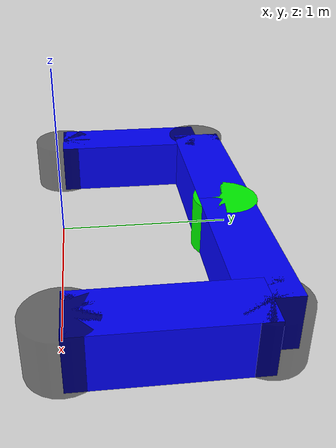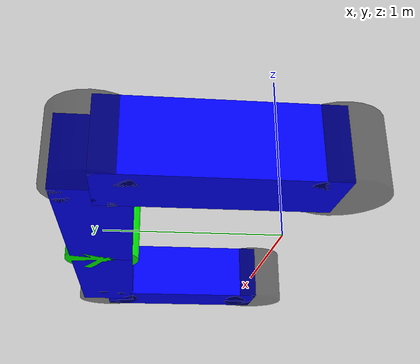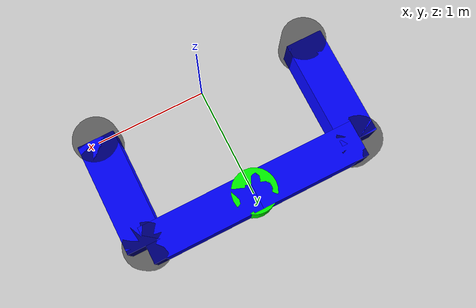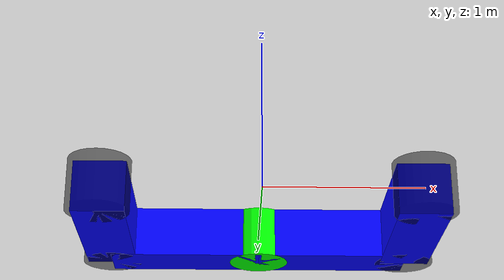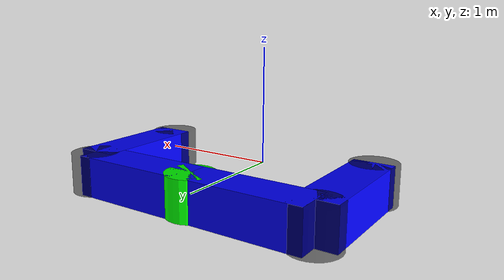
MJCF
<mujoco>
    <option timestep="0.00001" />
    <actuator>
        <motor gear="250" joint="shoulder_pitch" name="shoulder_pitch" ctrlrange="-100 100" ctrllimited="true"/>
        <motor gear="250" joint="shoulder_pitch2" name="shoulder_roll" ctrlrange="-100 100" ctrllimited="true"/>
    </actuator>
    <asset>
        <material name="blue" rgba="0 0 1 1" />
        <material name="green" rgba="0 1 0 1" />
        <material name="red" rgba="1 0 0 1" />
        <material name="white" rgba="1 1 1 1" />
        <material name="black" rgba="0 0 0 .5" />
    </asset>
    <worldbody>
        <geom type="plane" size="10 10 0.1" pos="0 0 -5" rgba=".9 0 0 1"  material = "white"/>
        <light diffuse=".5 .5 .5" pos="0 0 3" dir="0 0 -1" />
        <body name="link_1" pos="1 0 0" euler = "0 0 0">
            <joint name="shoulder_pitch" pos="0 0 0" axis="0 0 1" />
            <geom type="cylinder" size=".198 .165" pos="0 0 0" density="65" euler="0 0 0" material="black" />
            <geom type="box" size=".165 .165   .5" pos="0 .5 0" density="20" euler="90 0 0" material="blue" />
            <body name="link_2" pos="0 1 0" euler="0 0 0">
            <joint name="shoulder_pitch11" pos="0 0 0" axis="0 0 1" />
                <geom type="cylinder" size=".198    .165" pos="0 0 0" density="65" euler="0 0 0" material="black" />
                <geom type="box" size=".165 .165   .5" pos="-0.5 0 0" density="20" euler="90 90 0" material="blue" />
            <body name="actuator" pos="-1 0 0" euler="0 0 0">
                <joint name="shoulder_pitch12" pos="0 0 0" axis="0 0 1" />
                    <geom type="cylinder" size=".198    .165" pos="0 0 0" density="65" euler="0 0 0" material="green" />

                    </body>
                </body>
                </body>
        <body name="link_3" pos="-1 0 0" euler = "0 0 0">
            <joint name="shoulder_pitch2" pos="0 0 0" axis="0 0 1" />
            <geom type="cylinder" size=".198 .165" pos="0 0 0" density="65" euler="0 0 0" material="black" />
            <geom type="box" size=".165 .165   .5" pos="0 .5 0" density="20" euler="90 0 0" material="blue" />
            <body name="link_4" pos="0 1 0" euler="0 0 0">
            <joint name="shoulder_pitch22" pos="0 0 0" axis="0 0 1" />
                <geom type="cylinder" size=".198    .165" pos="0 0 0" density="65" euler="0 0 0" material="black" />
                <geom type="box" size=".165 .165   .5" pos="0.5 0 0" density="20" euler="90 -90 0" material="blue" />
            <body name="actuator2" pos="1 0 0" euler="0 0 0">
                <joint name="shoulder_pitch23" pos="0 0 0" axis="0 0 1" />
                    <geom type="cylinder" size=".198    .165" pos="0 0 0" density="65" euler="0 0 0" material="green" />

                    </body>
            </body>
        </body>
    </worldbody>
    <equality>
        <connect name="kinematic_link" active="true" body1="actuator" body2="actuator2" anchor="0 0 0" />
        <connect name="kinematic_link2" active="true" body1="link_4" body2="actuator" anchor="0 0 0" />
        <connect name="kinematic_link3" active="true" body1="actuator2" body2="link_2" anchor="0 0 0" />
    </equality>
    <contact>
        <exclude body1="actuator" body2="actuator2"/>
        <exclude body1="link_2" body2="link_4"/>
        <exclude body1="link_2" body2="actuator2"/>
        <exclude body1="link_2" body2="actuator"/>
        <exclude body1="link_4" body2="actuator2"/>
        <exclude body1="link_4" body2="actuator"/>
    </contact>
</mujoco>
